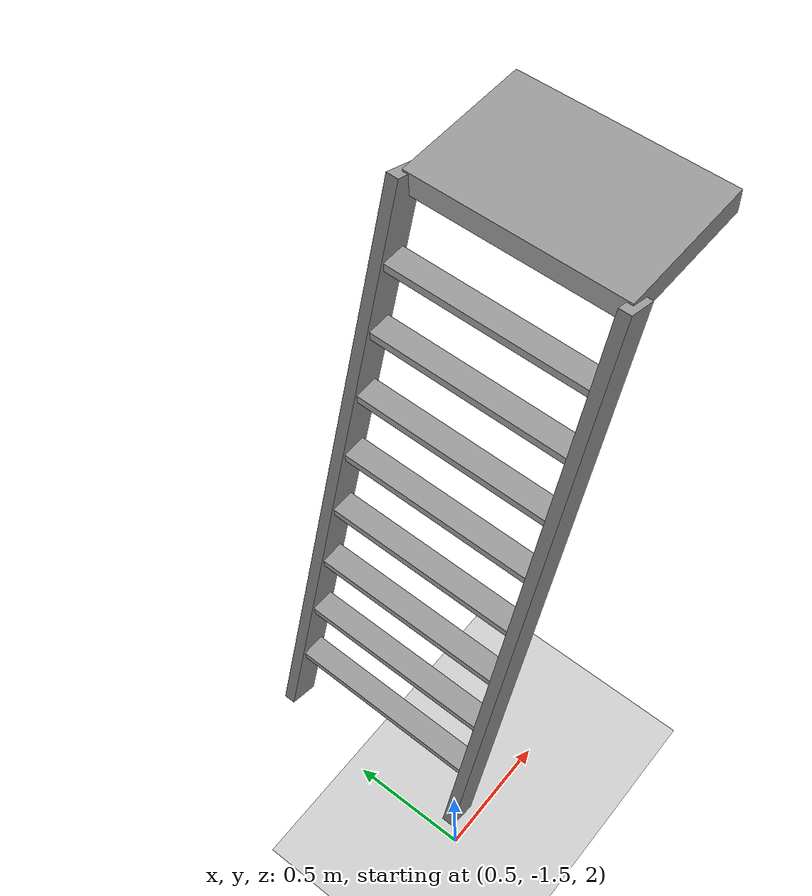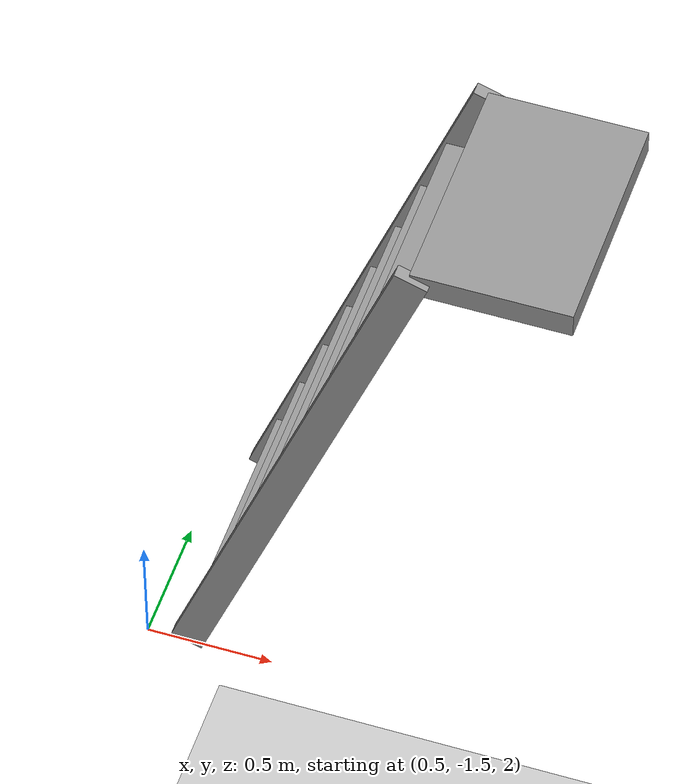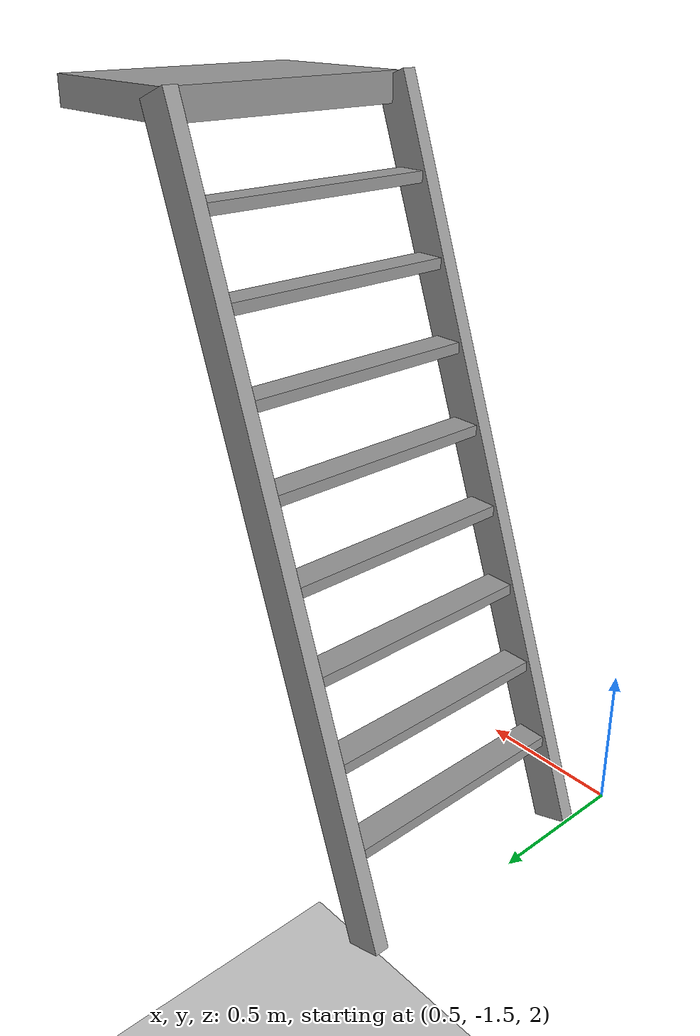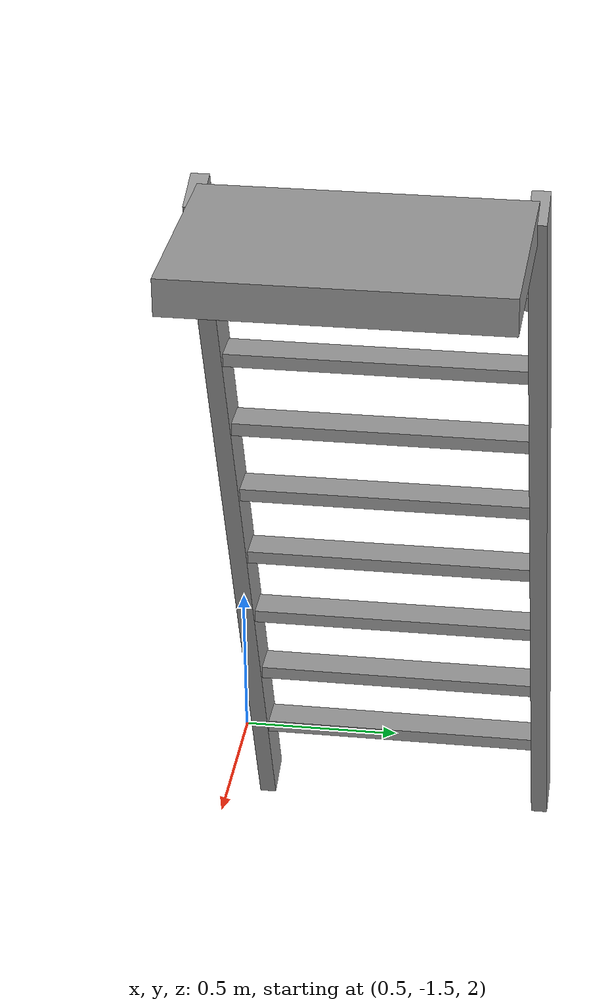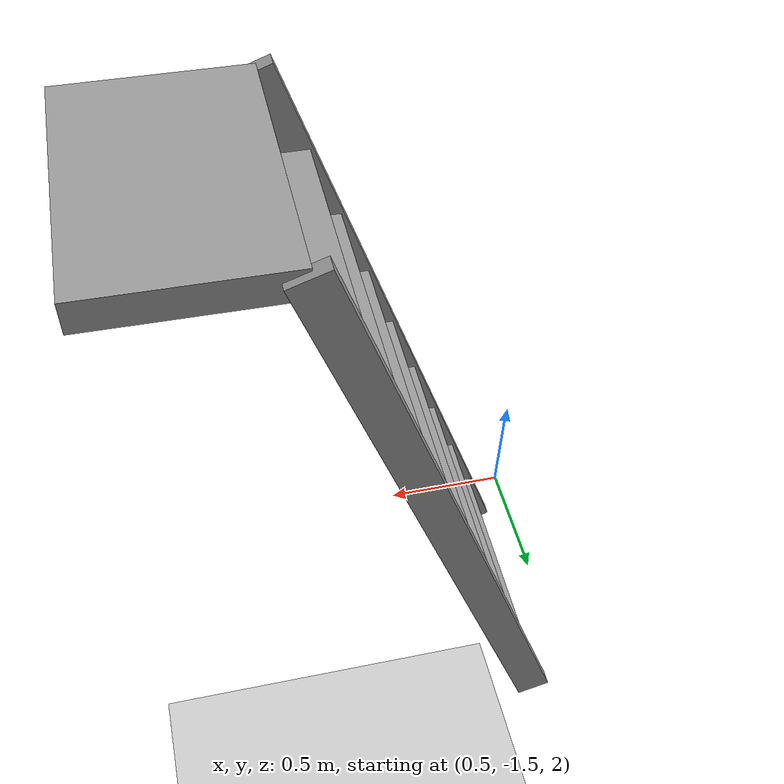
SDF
<sdf version="1.7">
 <world name="default">
  <model name="ground_plane">
   <static>1</static>
   <link name="link">
    <collision name="collision">
     <geometry><plane><normal>0 0 1</normal><size>100 100</size></plane></geometry>
     <surface>
      <contact><collide_bitmask>65535</collide_bitmask></contact>
      <friction><ode><mu>100</mu><mu2>50</mu2></ode></friction>
     </surface>
    </collision>
    <visual name="visual">
     <cast_shadows>0</cast_shadows>
     <geometry><plane><normal>0 0 1</normal><size>100 100</size></plane></geometry>
     <material>
      <script><uri>file://media/materials/scripts/gazebo.material</uri><name>Gazebo/Grey</name></script>
     </material>
    </visual>
   </link>
  </model>
  <model name="ladder_70deg_0rails">
   <static>1</static>
   <link name="step0">
    <pose>0 0.097059 0.266667 0 -0 0</pose>
    <inertial>
     <mass>9.75482</mass>
     <inertia>
      <ixx>0.00957124</ixx>
      <iyy>0.65963</iyy>
      <izz>0.666842</izz>
      <ixy>0</ixy>
      <ixz>0</ixz>
      <iyz>0</iyz>
     </inertia>
    </inertial>
    <collision name="collision"><geometry><box><size>0.9 0.1016 0.0381</size></box></geometry></collision>
    <visual name="visual">
     <geometry><box><size>0.9 0.1016 0.0381</size></box></geometry>
     <material>
      <script><uri>file://media/materials/scripts/gazebo.material</uri><name>Gazebo/Grey</name></script>
     </material>
    </visual>
   </link>
   <link name="step1">
    <pose>0 0.194117 0.533333 0 -0 0</pose>
    <inertial>
     <mass>9.75482</mass>
     <inertia>
      <ixx>0.00957124</ixx>
      <iyy>0.65963</iyy>
      <izz>0.666842</izz>
      <ixy>0</ixy>
      <ixz>0</ixz>
      <iyz>0</iyz>
     </inertia>
    </inertial>
    <collision name="collision"><geometry><box><size>0.9 0.1016 0.0381</size></box></geometry></collision>
    <visual name="visual">
     <geometry><box><size>0.9 0.1016 0.0381</size></box></geometry>
     <material>
      <script><uri>file://media/materials/scripts/gazebo.material</uri><name>Gazebo/Grey</name></script>
     </material>
    </visual>
   </link>
   <link name="step2">
    <pose>0 0.291176 0.8 0 -0 0</pose>
    <inertial>
     <mass>9.75482</mass>
     <inertia>
      <ixx>0.00957124</ixx>
      <iyy>0.65963</iyy>
      <izz>0.666842</izz>
      <ixy>0</ixy>
      <ixz>0</ixz>
      <iyz>0</iyz>
     </inertia>
    </inertial>
    <collision name="collision"><geometry><box><size>0.9 0.1016 0.0381</size></box></geometry></collision>
    <visual name="visual">
     <geometry><box><size>0.9 0.1016 0.0381</size></box></geometry>
     <material>
      <script><uri>file://media/materials/scripts/gazebo.material</uri><name>Gazebo/Grey</name></script>
     </material>
    </visual>
   </link>
   <link name="step3">
    <pose>0 0.388235 1.06667 0 -0 0</pose>
    <inertial>
     <mass>9.75482</mass>
     <inertia>
      <ixx>0.00957124</ixx>
      <iyy>0.65963</iyy>
      <izz>0.666842</izz>
      <ixy>0</ixy>
      <ixz>0</ixz>
      <iyz>0</iyz>
     </inertia>
    </inertial>
    <collision name="collision"><geometry><box><size>0.9 0.1016 0.0381</size></box></geometry></collision>
    <visual name="visual">
     <geometry><box><size>0.9 0.1016 0.0381</size></box></geometry>
     <material>
      <script><uri>file://media/materials/scripts/gazebo.material</uri><name>Gazebo/Grey</name></script>
     </material>
    </visual>
   </link>
   <link name="step4">
    <pose>0 0.485294 1.33333 0 -0 0</pose>
    <inertial>
     <mass>9.75482</mass>
     <inertia>
      <ixx>0.00957124</ixx>
      <iyy>0.65963</iyy>
      <izz>0.666842</izz>
      <ixy>0</ixy>
      <ixz>0</ixz>
      <iyz>0</iyz>
     </inertia>
    </inertial>
    <collision name="collision"><geometry><box><size>0.9 0.1016 0.0381</size></box></geometry></collision>
    <visual name="visual">
     <geometry><box><size>0.9 0.1016 0.0381</size></box></geometry>
     <material>
      <script><uri>file://media/materials/scripts/gazebo.material</uri><name>Gazebo/Grey</name></script>
     </material>
    </visual>
   </link>
   <link name="step5">
    <pose>0 0.582352 1.6 0 -0 0</pose>
    <inertial>
     <mass>9.75482</mass>
     <inertia>
      <ixx>0.00957124</ixx>
      <iyy>0.65963</iyy>
      <izz>0.666842</izz>
      <ixy>0</ixy>
      <ixz>0</ixz>
      <iyz>0</iyz>
     </inertia>
    </inertial>
    <collision name="collision"><geometry><box><size>0.9 0.1016 0.0381</size></box></geometry></collision>
    <visual name="visual">
     <geometry><box><size>0.9 0.1016 0.0381</size></box></geometry>
     <material>
      <script><uri>file://media/materials/scripts/gazebo.material</uri><name>Gazebo/Grey</name></script>
     </material>
    </visual>
   </link>
   <link name="step6">
    <pose>0 0.679411 1.86667 0 -0 0</pose>
    <inertial>
     <mass>9.75482</mass>
     <inertia>
      <ixx>0.00957124</ixx>
      <iyy>0.65963</iyy>
      <izz>0.666842</izz>
      <ixy>0</ixy>
      <ixz>0</ixz>
      <iyz>0</iyz>
     </inertia>
    </inertial>
    <collision name="collision"><geometry><box><size>0.9 0.1016 0.0381</size></box></geometry></collision>
    <visual name="visual">
     <geometry><box><size>0.9 0.1016 0.0381</size></box></geometry>
     <material>
      <script><uri>file://media/materials/scripts/gazebo.material</uri><name>Gazebo/Grey</name></script>
     </material>
    </visual>
   </link>
   <link name="step7">
    <pose>0 0.77647 2.13333 0 -0 0</pose>
    <inertial>
     <mass>9.75482</mass>
     <inertia>
      <ixx>0.00957124</ixx>
      <iyy>0.65963</iyy>
      <izz>0.666842</izz>
      <ixy>0</ixy>
      <ixz>0</ixz>
      <iyz>0</iyz>
     </inertia>
    </inertial>
    <collision name="collision"><geometry><box><size>0.9 0.1016 0.0381</size></box></geometry></collision>
    <visual name="visual">
     <geometry><box><size>0.9 0.1016 0.0381</size></box></geometry>
     <material>
      <script><uri>file://media/materials/scripts/gazebo.material</uri><name>Gazebo/Grey</name></script>
     </material>
    </visual>
   </link>
   <link name="landing">
    <pose>0 1.17353 2.4 0 -0 0</pose>
    <inertial>
     <mass>57.6072</mass>
     <inertia><ixx>1.73518</ixx><iyy>3.89545</iyy><izz>5.6167</izz><ixy>0</ixy><ixz>0</ixz><iyz>0</iyz></inertia>
    </inertial>
    <collision name="collision"><geometry><box><size>0.9 0.6 0.1016</size></box></geometry></collision>
    <visual name="visual">
     <geometry><box><size>0.9 0.6 0.1016</size></box></geometry>
     <material>
      <script><uri>file://media/materials/scripts/gazebo.material</uri><name>Gazebo/Grey</name></script>
     </material>
    </visual>
   </link>
   <link name="left_side_wall">
    <pose>-0.45 0.436764 1.2 1.22173 -0 0</pose>
    <collision name="collision"><geometry><box><size>0.0508 2.63403 0.13</size></box></geometry></collision>
    <visual name="visual">
     <geometry><box><size>0.0508 2.63403 0.13</size></box></geometry>
     <material>
      <script><uri>file://media/materials/scripts/gazebo.material</uri><name>Gazebo/Grey</name></script>
     </material>
    </visual>
   </link>
   <link name="right_side_wall">
    <pose>0.45 0.436764 1.2 1.22173 -0 0</pose>
    <collision name="collision"><geometry><box><size>0.0508 2.63403 0.13</size></box></geometry></collision>
    <visual name="visual">
     <geometry><box><size>0.0508 2.63403 0.13</size></box></geometry>
     <material>
      <script><uri>file://media/materials/scripts/gazebo.material</uri><name>Gazebo/Grey</name></script>
     </material>
    </visual>
   </link>
   <pose>0.644209 -0.952347 1.92455 0 0 -1.5783</pose>
  </model>
 </world>
</sdf>
